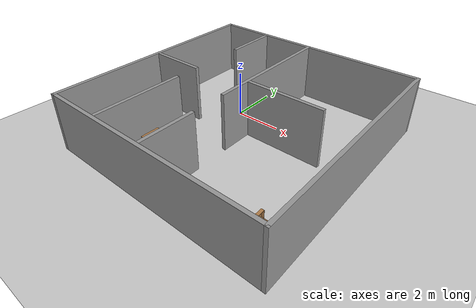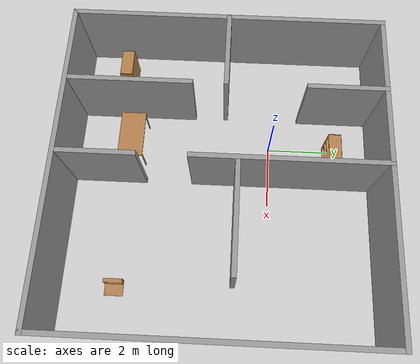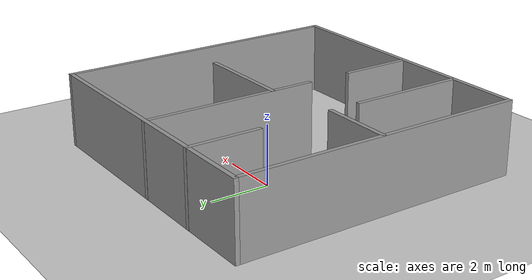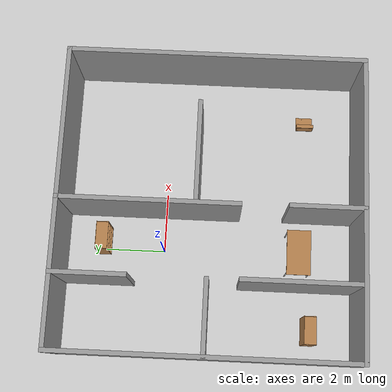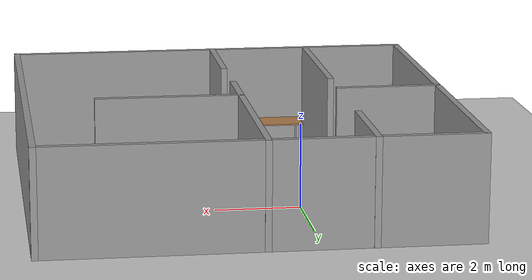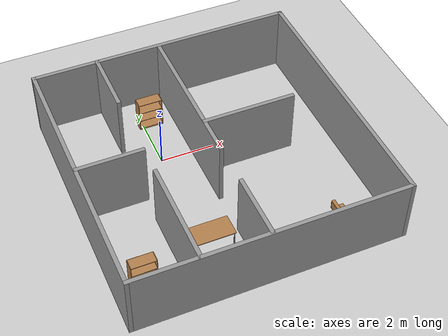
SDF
<sdf version="1.7">
 <world name="default">
  <light name="sun" type="directional">
   <pose>0 0 10 0 -0 0</pose>
   <diffuse>0.8 0.8 0.8 1</diffuse>
   <specular>0.2 0.2 0.2 1</specular>
   <attenuation>
    <range>1000</range>
    <constant>0.9</constant>
    <linear>0.01</linear>
    <quadratic>0.001</quadratic>
   </attenuation>
   <direction>-0.5 0.1 -0.9</direction>
   <spot><inner_angle>0</inner_angle><outer_angle>0</outer_angle><falloff>0</falloff></spot>
  </light>
  <model name="ground_plane">
   <static>1</static>
   <link name="link">
    <collision name="collision">
     <geometry><plane><normal>0 0 1</normal><size>100 100</size></plane></geometry>
     <surface>
      <contact><collide_bitmask>65535</collide_bitmask></contact>
      <friction><ode><mu>100</mu><mu2>50</mu2></ode></friction>
     </surface>
    </collision>
    <visual name="visual">
     <cast_shadows>0</cast_shadows>
     <geometry><plane><normal>0 0 1</normal><size>100 100</size></plane></geometry>
     <material>
      <script><uri>file://media/materials/scripts/gazebo.material</uri><name>Gazebo/Grey</name></script>
     </material>
    </visual>
   </link>
  </model>
  <gravity>0 0 -9.8</gravity>
  <magnetic_field>6e-06 2.3e-05 -4.2e-05</magnetic_field>
  <atmosphere type="adiabatic"/>
  <physics type="ode">
   <max_step_size>0.001</max_step_size>
   <real_time_factor>1</real_time_factor>
   <real_time_update_rate>1000</real_time_update_rate>
  </physics>
  <scene><ambient>0.4 0.4 0.4 1</ambient><background>0.7 0.7 0.7 1</background><shadows>1</shadows></scene>
  <spherical_coordinates>
   <surface_model>EARTH_WGS84</surface_model>
   <latitude_deg>0</latitude_deg>
   <longitude_deg>0</longitude_deg>
   <elevation>0</elevation>
   <heading_deg>0</heading_deg>
  </spherical_coordinates>
  <model name="room_with_walls_10x10">
   <pose>1.49895 -1.53115 0 0 -0 0</pose>
   <link name="Wall_1">
    <collision name="Wall_1_Collision">
     <geometry><box><size>10 0.15 2.5</size></box></geometry>
     <pose>0 0 1.25 0 -0 0</pose>
    </collision>
    <visual name="Wall_1_Visual">
     <pose>0 0 1.25 0 -0 0</pose>
     <geometry><box><size>10 0.15 2.5</size></box></geometry>
     <material>
      <script><uri>file://media/materials/scripts/gazebo.material</uri><name>Gazebo/Grey</name></script>
      <ambient>1 1 1 1</ambient>
     </material>
     <meta><layer>0</layer></meta>
    </visual>
    <pose>-0.119159 -4.92736 0 0 -0 0</pose>
   </link>
   <link name="Wall_11">
    <collision name="Wall_11_Collision">
     <geometry><box><size>2.5 0.15 2.5</size></box></geometry>
     <pose>0 0 1.25 0 -0 0</pose>
    </collision>
    <visual name="Wall_11_Visual">
     <pose>0 0 1.25 0 -0 0</pose>
     <geometry><box><size>2.5 0.15 2.5</size></box></geometry>
     <material>
      <script><uri>file://media/materials/scripts/gazebo.material</uri><name>Gazebo/Grey</name></script>
      <ambient>1 1 1 1</ambient>
     </material>
     <meta><layer>0</layer></meta>
    </visual>
    <pose>-2.64666 3.75236 0 0 -0 -1.5708</pose>
   </link>
   <link name="Wall_16">
    <collision name="Wall_16_Collision">
     <geometry><box><size>2.5 0.15 2.5</size></box></geometry>
     <pose>0 0 1.25 0 -0 0</pose>
    </collision>
    <visual name="Wall_16_Visual">
     <pose>0 0 1.25 0 -0 0</pose>
     <geometry><box><size>2.5 0.15 2.5</size></box></geometry>
     <material>
      <script><uri>file://media/materials/scripts/gazebo.material</uri><name>Gazebo/Grey</name></script>
      <ambient>1 1 1 1</ambient>
     </material>
     <meta><layer>0</layer></meta>
    </visual>
    <pose>-3.84066 0.028362 0 0 -0 0</pose>
   </link>
   <link name="Wall_18">
    <collision name="Wall_18_Collision">
     <geometry><box><size>4 0.15 2.5</size></box></geometry>
     <pose>0 0 1.25 0 -0 0</pose>
    </collision>
    <visual name="Wall_18_Visual">
     <pose>0 0 1.25 0 -0 0</pose>
     <geometry><box><size>4 0.15 2.5</size></box></geometry>
     <material>
      <script><uri>file://media/materials/scripts/gazebo.material</uri><name>Gazebo/Grey</name></script>
      <ambient>1 1 1 1</ambient>
     </material>
     <meta><layer>0</layer></meta>
    </visual>
    <pose>-2.63516 -2.99164 0 0 -0 1.5708</pose>
   </link>
   <link name="Wall_2">
    <collision name="Wall_2_Collision">
     <geometry><box><size>10 0.15 2.5</size></box></geometry>
     <pose>0 0 1.25 0 -0 0</pose>
    </collision>
    <visual name="Wall_2_Visual">
     <pose>0 0 1.25 0 -0 0</pose>
     <geometry><box><size>10 0.15 2.5</size></box></geometry>
     <material>
      <script><uri>file://media/materials/scripts/gazebo.material</uri><name>Gazebo/Grey</name></script>
      <ambient>1 1 1 1</ambient>
     </material>
     <meta><layer>0</layer></meta>
    </visual>
    <pose>4.80584 -0.002362 0 0 -0 1.5708</pose>
   </link>
   <link name="Wall_24">
    <collision name="Wall_24_Collision">
     <geometry><box><size>6 0.15 2.5</size></box></geometry>
     <pose>0 0 1.25 0 -0 0</pose>
    </collision>
    <visual name="Wall_24_Visual">
     <pose>0 0 1.25 0 -0 0</pose>
     <geometry><box><size>6 0.15 2.5</size></box></geometry>
     <material>
      <script><uri>file://media/materials/scripts/gazebo.material</uri><name>Gazebo/Grey</name></script>
      <ambient>1 1 1 1</ambient>
     </material>
     <meta><layer>0</layer></meta>
    </visual>
    <pose>-0.243157 2.00236 0 0 -0 -1.5708</pose>
   </link>
   <link name="Wall_28">
    <collision name="Wall_28_Collision">
     <geometry><box><size>2.5 0.15 2.5</size></box></geometry>
     <pose>0 0 1.25 0 -0 0</pose>
    </collision>
    <visual name="Wall_28_Visual">
     <pose>0 0 1.25 0 -0 0</pose>
     <geometry><box><size>2.5 0.15 2.5</size></box></geometry>
     <material>
      <script><uri>file://media/materials/scripts/gazebo.material</uri><name>Gazebo/Grey</name></script>
      <ambient>1 1 1 1</ambient>
     </material>
     <meta><layer>0</layer></meta>
    </visual>
    <pose>-0.220157 -3.74164 0 0 -0 1.5708</pose>
   </link>
   <link name="Wall_3">
    <collision name="Wall_3_Collision">
     <geometry><box><size>10 0.15 2.5</size></box></geometry>
     <pose>0 0 1.25 0 -0 0</pose>
    </collision>
    <visual name="Wall_3_Visual">
     <pose>0 0 1.25 0 -0 0</pose>
     <geometry><box><size>10 0.15 2.5</size></box></geometry>
     <material>
      <script><uri>file://media/materials/scripts/gazebo.material</uri><name>Gazebo/Grey</name></script>
      <ambient>1 1 1 1</ambient>
     </material>
     <meta><layer>0</layer></meta>
    </visual>
    <pose>-0.119159 4.92264 0 0 -0 3.14159</pose>
   </link>
   <link name="Wall_36">
    <collision name="Wall_36_Collision">
     <geometry><box><size>3.5 0.15 2.5</size></box></geometry>
     <pose>0 0 1.25 0 -0 0</pose>
    </collision>
    <visual name="Wall_36_Visual">
     <pose>0 0 1.25 0 -0 0</pose>
     <geometry><box><size>3.5 0.15 2.5</size></box></geometry>
     <material>
      <script><uri>file://media/materials/scripts/gazebo.material</uri><name>Gazebo/Grey</name></script>
      <ambient>1 1 1 1</ambient>
     </material>
     <meta><layer>0</layer></meta>
    </visual>
    <pose>1.44334 0.476862 0 0 -0 0</pose>
   </link>
   <link name="Wall_4">
    <collision name="Wall_4_Collision">
     <geometry><box><size>10 0.15 2.5</size></box></geometry>
     <pose>0 0 1.25 0 -0 0</pose>
    </collision>
    <visual name="Wall_4_Visual">
     <pose>0 0 1.25 0 -0 0</pose>
     <geometry><box><size>10 0.15 2.5</size></box></geometry>
     <material>
      <script><uri>file://media/materials/scripts/gazebo.material</uri><name>Gazebo/Grey</name></script>
      <ambient>1 1 1 1</ambient>
     </material>
     <meta><layer>0</layer></meta>
    </visual>
    <pose>-5.04416 -0.002362 0 0 -0 -1.5708</pose>
   </link>
   <static>1</static>
  </model>
  <model name="bookshelf">
   <static>1</static>
   <link name="link">
    <inertial><mass>1</mass></inertial>
    <collision name="back">
     <pose>0 0.005 0.6 0 -0 0</pose>
     <geometry><box><size>0.9 0.01 1.2</size></box></geometry>
    </collision>
    <visual name="visual1">
     <pose>0 0.005 0.6 0 -0 0</pose>
     <geometry><box><size>0.9 0.01 1.2</size></box></geometry>
     <material>
      <script><uri>file://media/materials/scripts/gazebo.material</uri><name>Gazebo/Wood</name></script>
     </material>
    </visual>
    <collision name="left_side">
     <pose>0.45 -0.195 0.6 0 -0 0</pose>
     <geometry><box><size>0.02 0.4 1.2</size></box></geometry>
    </collision>
    <visual name="visual2">
     <pose>0.45 -0.195 0.6 0 -0 0</pose>
     <geometry><box><size>0.02 0.4 1.2</size></box></geometry>
     <material>
      <script><uri>file://media/materials/scripts/gazebo.material</uri><name>Gazebo/Wood</name></script>
     </material>
    </visual>
    <collision name="right_side">
     <pose>-0.45 -0.195 0.6 0 -0 0</pose>
     <geometry><box><size>0.02 0.4 1.2</size></box></geometry>
    </collision>
    <visual name="visual3">
     <pose>-0.45 -0.195 0.6 0 -0 0</pose>
     <geometry><box><size>0.02 0.4 1.2</size></box></geometry>
     <material>
      <script><uri>file://media/materials/scripts/gazebo.material</uri><name>Gazebo/Wood</name></script>
     </material>
    </visual>
    <collision name="bottom">
     <pose>0 -0.195 0.03 0 -0 0</pose>
     <geometry><box><size>0.88 0.4 0.06</size></box></geometry>
    </collision>
    <visual name="visual4">
     <pose>0 -0.195 0.03 0 -0 0</pose>
     <geometry><box><size>0.88 0.4 0.06</size></box></geometry>
     <material>
      <script><uri>file://media/materials/scripts/gazebo.material</uri><name>Gazebo/Wood</name></script>
     </material>
    </visual>
    <collision name="top">
     <pose>0 -0.195 1.19 0 -0 0</pose>
     <geometry><box><size>0.88 0.4 0.02</size></box></geometry>
    </collision>
    <visual name="visual5">
     <pose>0 -0.195 1.19 0 -0 0</pose>
     <geometry><box><size>0.88 0.4 0.02</size></box></geometry>
     <material>
      <script><uri>file://media/materials/scripts/gazebo.material</uri><name>Gazebo/Wood</name></script>
     </material>
    </visual>
    <collision name="low_shelf">
     <pose>0 -0.195 0.43 0 -0 0</pose>
     <geometry><box><size>0.88 0.4 0.02</size></box></geometry>
    </collision>
    <visual name="visual6">
     <pose>0 -0.195 0.43 0 -0 0</pose>
     <geometry><box><size>0.88 0.4 0.02</size></box></geometry>
     <material>
      <script><uri>file://media/materials/scripts/gazebo.material</uri><name>Gazebo/Wood</name></script>
     </material>
    </visual>
    <collision name="high_shelf">
     <pose>0 -0.195 0.8 0 -0 0</pose>
     <geometry><box><size>0.88 0.4 0.02</size></box></geometry>
    </collision>
    <visual name="visual7">
     <pose>0 -0.195 0.8 0 -0 0</pose>
     <geometry><box><size>0.88 0.4 0.02</size></box></geometry>
     <material>
      <script><uri>file://media/materials/scripts/gazebo.material</uri><name>Gazebo/Wood</name></script>
     </material>
    </visual>
   </link>
   <pose>-2.53349 -4.71769 0 0 -0 0</pose>
  </model>
  <model name="table">
   <static>1</static>
   <link name="link">
    <collision name="surface">
     <pose>0 0 1 0 -0 0</pose>
     <geometry><box><size>1.5 0.8 0.03</size></box></geometry>
     <surface><friction><ode><mu>0.6</mu><mu2>0.6</mu2></ode></friction></surface>
    </collision>
    <visual name="visual1">
     <pose>0 0 1 0 -0 0</pose>
     <geometry><box><size>1.5 0.8 0.03</size></box></geometry>
     <material>
      <script><uri>file://media/materials/scripts/gazebo.material</uri><name>Gazebo/Wood</name></script>
     </material>
    </visual>
    <collision name="front_left_leg">
     <pose>0.68 0.38 0.5 0 -0 0</pose>
     <geometry><cylinder><radius>0.02</radius><length>1</length></cylinder></geometry>
    </collision>
    <visual name="front_left_leg">
     <pose>0.68 0.38 0.5 0 -0 0</pose>
     <geometry><cylinder><radius>0.02</radius><length>1</length></cylinder></geometry>
     <material>
      <script><uri>file://media/materials/scripts/gazebo.material</uri><name>Gazebo/Grey</name></script>
     </material>
    </visual>
    <collision name="front_right_leg">
     <pose>0.68 -0.38 0.5 0 -0 0</pose>
     <geometry><cylinder><radius>0.02</radius><length>1</length></cylinder></geometry>
    </collision>
    <visual name="front_right_leg">
     <pose>0.68 -0.38 0.5 0 -0 0</pose>
     <geometry><cylinder><radius>0.02</radius><length>1</length></cylinder></geometry>
     <material>
      <script><uri>file://media/materials/scripts/gazebo.material</uri><name>Gazebo/Grey</name></script>
     </material>
    </visual>
    <collision name="back_right_leg">
     <pose>-0.68 -0.38 0.5 0 -0 0</pose>
     <geometry><cylinder><radius>0.02</radius><length>1</length></cylinder></geometry>
    </collision>
    <visual name="back_right_leg">
     <pose>-0.68 -0.38 0.5 0 -0 0</pose>
     <geometry><cylinder><radius>0.02</radius><length>1</length></cylinder></geometry>
     <material>
      <script><uri>file://media/materials/scripts/gazebo.material</uri><name>Gazebo/Grey</name></script>
     </material>
    </visual>
    <collision name="back_left_leg">
     <pose>-0.68 0.38 0.5 0 -0 0</pose>
     <geometry><cylinder><radius>0.02</radius><length>1</length></cylinder></geometry>
    </collision>
    <visual name="back_left_leg">
     <pose>-0.68 0.38 0.5 0 -0 0</pose>
     <geometry><cylinder><radius>0.02</radius><length>1</length></cylinder></geometry>
     <material>
      <script><uri>file://media/materials/scripts/gazebo.material</uri><name>Gazebo/Grey</name></script>
     </material>
    </visual>
   </link>
   <pose>0.019878 -4.51721 0 0 -0 0</pose>
  </model>
  <model name="bookshelf_0">
   <static>1</static>
   <link name="link">
    <inertial><mass>1</mass></inertial>
    <collision name="back">
     <pose>0 0.005 0.6 0 -0 0</pose>
     <geometry><box><size>0.9 0.01 1.2</size></box></geometry>
    </collision>
    <visual name="visual1">
     <pose>0 0.005 0.6 0 -0 0</pose>
     <geometry><box><size>0.9 0.01 1.2</size></box></geometry>
     <material>
      <script><uri>file://media/materials/scripts/gazebo.material</uri><name>Gazebo/Wood</name></script>
     </material>
    </visual>
    <collision name="left_side">
     <pose>0.45 -0.195 0.6 0 -0 0</pose>
     <geometry><box><size>0.02 0.4 1.2</size></box></geometry>
    </collision>
    <visual name="visual2">
     <pose>0.45 -0.195 0.6 0 -0 0</pose>
     <geometry><box><size>0.02 0.4 1.2</size></box></geometry>
     <material>
      <script><uri>file://media/materials/scripts/gazebo.material</uri><name>Gazebo/Wood</name></script>
     </material>
    </visual>
    <collision name="right_side">
     <pose>-0.45 -0.195 0.6 0 -0 0</pose>
     <geometry><box><size>0.02 0.4 1.2</size></box></geometry>
    </collision>
    <visual name="visual3">
     <pose>-0.45 -0.195 0.6 0 -0 0</pose>
     <geometry><box><size>0.02 0.4 1.2</size></box></geometry>
     <material>
      <script><uri>file://media/materials/scripts/gazebo.material</uri><name>Gazebo/Wood</name></script>
     </material>
    </visual>
    <collision name="bottom">
     <pose>0 -0.195 0.03 0 -0 0</pose>
     <geometry><box><size>0.88 0.4 0.06</size></box></geometry>
    </collision>
    <visual name="visual4">
     <pose>0 -0.195 0.03 0 -0 0</pose>
     <geometry><box><size>0.88 0.4 0.06</size></box></geometry>
     <material>
      <script><uri>file://media/materials/scripts/gazebo.material</uri><name>Gazebo/Wood</name></script>
     </material>
    </visual>
    <collision name="top">
     <pose>0 -0.195 1.19 0 -0 0</pose>
     <geometry><box><size>0.88 0.4 0.02</size></box></geometry>
    </collision>
    <visual name="visual5">
     <pose>0 -0.195 1.19 0 -0 0</pose>
     <geometry><box><size>0.88 0.4 0.02</size></box></geometry>
     <material>
      <script><uri>file://media/materials/scripts/gazebo.material</uri><name>Gazebo/Wood</name></script>
     </material>
    </visual>
    <collision name="low_shelf">
     <pose>0 -0.195 0.43 0 -0 0</pose>
     <geometry><box><size>0.88 0.4 0.02</size></box></geometry>
    </collision>
    <visual name="visual6">
     <pose>0 -0.195 0.43 0 -0 0</pose>
     <geometry><box><size>0.88 0.4 0.02</size></box></geometry>
     <material>
      <script><uri>file://media/materials/scripts/gazebo.material</uri><name>Gazebo/Wood</name></script>
     </material>
    </visual>
    <collision name="high_shelf">
     <pose>0 -0.195 0.8 0 -0 0</pose>
     <geometry><box><size>0.88 0.4 0.02</size></box></geometry>
    </collision>
    <visual name="visual7">
     <pose>0 -0.195 0.8 0 -0 0</pose>
     <geometry><box><size>0.88 0.4 0.02</size></box></geometry>
     <material>
      <script><uri>file://media/materials/scripts/gazebo.material</uri><name>Gazebo/Wood</name></script>
     </material>
    </visual>
   </link>
   <pose>0.294283 2.23927 0 0 -0 0</pose>
  </model>
  <model name="wooden_case">
   <link name="base">
    <pose>0 0 0.024 0 -0 0</pose>
    <inertial>
     <pose>-0.022184 0 0.171592 0 -0 0</pose>
     <mass>3.96264</mass>
     <inertia>
      <ixx>0.213536</ixx>
      <ixy>0</ixy>
      <ixz>0.000779377</ixz>
      <iyy>0.0708943</iyy>
      <iyz>0</iyz>
      <izz>0.154604</izz>
     </inertia>
    </inertial>
    <collision name="collision_back">
     <pose>-0.053975 0 0.1778 0 -0 0</pose>
     <geometry><box><size>0.01905 0.5461 0.3175</size></box></geometry>
     <surface>
      <contact>
       <poissons_ratio>0.347</poissons_ratio>
       <elastic_modulus>8.8e+09</elastic_modulus>
       <ode><kp>100000</kp><kd>100</kd><max_vel>100</max_vel><min_depth>0.001</min_depth></ode>
      </contact>
      <friction>
       <torsional>
        <coefficient>1</coefficient>
        <use_patch_radius>0</use_patch_radius>
        <surface_radius>0.01</surface_radius>
       </torsional>
      </friction>
     </surface>
    </collision>
    <visual name="visual_back">
     <pose>-0.053975 0 0.1778 0 -0 0</pose>
     <geometry><box><size>0.01905 0.5461 0.3175</size></box></geometry>
     <material>
      <script><uri>file://media/materials/scripts/gazebo.material</uri><name>Gazebo/Wood</name></script>
     </material>
    </visual>
    <collision name="collision_bottom">
     <pose>0 0 0.009525 0 -0 0</pose>
     <geometry><box><size>0.127 0.5842 0.01905</size></box></geometry>
     <surface>
      <contact>
       <poissons_ratio>0.347</poissons_ratio>
       <elastic_modulus>8.8e+09</elastic_modulus>
       <ode><kp>100000</kp><kd>100</kd><max_vel>100</max_vel><min_depth>0.001</min_depth></ode>
      </contact>
      <friction>
       <torsional>
        <coefficient>1</coefficient>
        <use_patch_radius>0</use_patch_radius>
        <surface_radius>0.01</surface_radius>
       </torsional>
      </friction>
     </surface>
    </collision>
    <visual name="visual_bottom">
     <pose>0 0 0.009525 0 -0 0</pose>
     <geometry><box><size>0.127 0.5842 0.01905</size></box></geometry>
     <material>
      <script><uri>file://media/materials/scripts/gazebo.material</uri><name>Gazebo/Wood</name></script>
     </material>
    </visual>
    <collision name="collision_top">
     <pose>0 0 0.346075 0 -0 0</pose>
     <geometry><box><size>0.127 0.5842 0.01905</size></box></geometry>
     <surface>
      <contact>
       <poissons_ratio>0.347</poissons_ratio>
       <elastic_modulus>8.8e+09</elastic_modulus>
       <ode><kp>100000</kp><kd>100</kd><max_vel>100</max_vel><min_depth>0.001</min_depth></ode>
      </contact>
      <friction>
       <torsional>
        <coefficient>1</coefficient>
        <use_patch_radius>0</use_patch_radius>
        <surface_radius>0.01</surface_radius>
       </torsional>
      </friction>
     </surface>
    </collision>
    <visual name="visual_top">
     <pose>0 0 0.346075 0 -0 0</pose>
     <geometry><box><size>0.127 0.5842 0.01905</size></box></geometry>
     <material>
      <script><uri>file://media/materials/scripts/gazebo.material</uri><name>Gazebo/Wood</name></script>
     </material>
    </visual>
    <collision name="collision_left">
     <pose>0 -0.282575 0.1778 0 -0 0</pose>
     <geometry><box><size>0.127 0.01905 0.3175</size></box></geometry>
     <surface>
      <contact>
       <poissons_ratio>0.347</poissons_ratio>
       <elastic_modulus>8.8e+09</elastic_modulus>
       <ode><kp>100000</kp><kd>100</kd><max_vel>100</max_vel><min_depth>0.001</min_depth></ode>
      </contact>
      <friction>
       <torsional>
        <coefficient>1</coefficient>
        <use_patch_radius>0</use_patch_radius>
        <surface_radius>0.01</surface_radius>
       </torsional>
      </friction>
     </surface>
    </collision>
    <visual name="visual_left">
     <pose>0 -0.282575 0.1778 0 -0 0</pose>
     <geometry><box><size>0.127 0.01905 0.3175</size></box></geometry>
     <material>
      <script><uri>file://media/materials/scripts/gazebo.material</uri><name>Gazebo/Wood</name></script>
     </material>
    </visual>
    <collision name="collision_right">
     <pose>0 0.282575 0.1778 0 -0 0</pose>
     <geometry><box><size>0.127 0.01905 0.3175</size></box></geometry>
     <surface>
      <contact>
       <poissons_ratio>0.347</poissons_ratio>
       <elastic_modulus>8.8e+09</elastic_modulus>
       <ode><kp>100000</kp><kd>100</kd><max_vel>100</max_vel><min_depth>0.001</min_depth></ode>
      </contact>
      <friction>
       <torsional>
        <coefficient>1</coefficient>
        <use_patch_radius>0</use_patch_radius>
        <surface_radius>0.01</surface_radius>
       </torsional>
      </friction>
     </surface>
    </collision>
    <visual name="visual_right">
     <pose>0 0.282575 0.1778 0 -0 0</pose>
     <geometry><box><size>0.127 0.01905 0.3175</size></box></geometry>
     <material>
      <script><uri>file://media/materials/scripts/gazebo.material</uri><name>Gazebo/Wood</name></script>
     </material>
    </visual>
    <collision name="collision_block_left">
     <pose>0.0095 -0.2151 -0.012 0 -0 0</pose>
     <geometry><box><size>0.108 0.05 0.024</size></box></geometry>
     <surface>
      <contact>
       <poissons_ratio>0.347</poissons_ratio>
       <elastic_modulus>8.8e+09</elastic_modulus>
       <ode><kp>100000</kp><kd>100</kd><max_vel>100</max_vel><min_depth>0.001</min_depth></ode>
      </contact>
      <friction>
       <torsional>
        <coefficient>1</coefficient>
        <use_patch_radius>0</use_patch_radius>
        <surface_radius>0.01</surface_radius>
       </torsional>
      </friction>
     </surface>
    </collision>
    <visual name="visual_block_left">
     <pose>0.0095 -0.2151 -0.012 0 -0 0</pose>
     <geometry><box><size>0.108 0.05 0.024</size></box></geometry>
     <material>
      <script><uri>file://media/materials/scripts/gazebo.material</uri><name>Gazebo/Wood</name></script>
     </material>
    </visual>
    <collision name="collision_block_right">
     <pose>0.0095 0.2151 -0.012 0 -0 0</pose>
     <geometry><box><size>0.108 0.05 0.024</size></box></geometry>
     <surface>
      <contact>
       <poissons_ratio>0.347</poissons_ratio>
       <elastic_modulus>8.8e+09</elastic_modulus>
       <ode><kp>100000</kp><kd>100</kd><max_vel>100</max_vel><min_depth>0.001</min_depth></ode>
      </contact>
      <friction>
       <torsional>
        <coefficient>1</coefficient>
        <use_patch_radius>0</use_patch_radius>
        <surface_radius>0.01</surface_radius>
       </torsional>
      </friction>
     </surface>
    </collision>
    <visual name="visual_block_right">
     <pose>0.0095 0.2151 -0.012 0 -0 0</pose>
     <geometry><box><size>0.108 0.05 0.024</size></box></geometry>
     <material>
      <script><uri>file://media/materials/scripts/gazebo.material</uri><name>Gazebo/Wood</name></script>
     </material>
    </visual>
   </link>
   <link name="lid">
    <pose>0.243775 0 0.009525 0 -0 0</pose>
    <inertial>
     <mass>1.97874</mass>
     <inertia>
      <ixx>0.0563367</ixx>
      <ixy>0</ixy>
      <ixz>0</ixz>
      <iyy>0.020911</iyy>
      <iyz>0</iyz>
      <izz>0.0771281</izz>
     </inertia>
    </inertial>
    <collision name="collision">
     <geometry><box><size>0.3556 0.5842 0.01905</size></box></geometry>
     <surface>
      <contact>
       <poissons_ratio>0.347</poissons_ratio>
       <elastic_modulus>8.8e+09</elastic_modulus>
       <ode><kp>100000</kp><kd>100</kd><max_vel>100</max_vel><min_depth>0.001</min_depth></ode>
      </contact>
      <friction>
       <torsional>
        <coefficient>1</coefficient>
        <use_patch_radius>0</use_patch_radius>
        <surface_radius>0.01</surface_radius>
       </torsional>
      </friction>
     </surface>
    </collision>
    <visual name="visual">
     <geometry><box><size>0.3556 0.5842 0.01905</size></box></geometry>
     <material>
      <script><uri>file://media/materials/scripts/gazebo.material</uri><name>Gazebo/Wood</name></script>
     </material>
    </visual>
    <visual name="tee_nut_1">
     <pose>0.122 -0.216 0 0 -0 0</pose>
     <geometry><cylinder><radius>0.00635</radius><length>0.0192405</length></cylinder></geometry>
     <material>
      <script><uri>file://media/materials/scripts/gazebo.material</uri><name>Gazebo/Grey</name></script>
     </material>
    </visual>
    <visual name="tee_nut_2">
     <pose>0.122 -0.088 0 0 -0 0</pose>
     <geometry><cylinder><radius>0.00635</radius><length>0.0192405</length></cylinder></geometry>
     <material>
      <script><uri>file://media/materials/scripts/gazebo.material</uri><name>Gazebo/Grey</name></script>
     </material>
    </visual>
    <visual name="tee_nut_3">
     <pose>0.122 0.088 0 0 -0 0</pose>
     <geometry><cylinder><radius>0.00635</radius><length>0.0192405</length></cylinder></geometry>
     <material>
      <script><uri>file://media/materials/scripts/gazebo.material</uri><name>Gazebo/Grey</name></script>
     </material>
    </visual>
    <visual name="tee_nut_4">
     <pose>0.122 0.216 0 0 -0 0</pose>
     <geometry><cylinder><radius>0.00635</radius><length>0.0192405</length></cylinder></geometry>
     <material>
      <script><uri>file://media/materials/scripts/gazebo.material</uri><name>Gazebo/Grey</name></script>
     </material>
    </visual>
   </link>
   <joint name="lid_hinge" type="revolute">
    <pose>-0.1778 0 0.01905 0 -0 0</pose>
    <parent>base</parent>
    <child>lid</child>
    <axis>
     <xyz>0 1 0</xyz>
     <limit><upper>0.523599</upper><lower>-1.5708</lower></limit>
     <dynamics><spring_reference>0</spring_reference><spring_stiffness>0</spring_stiffness></dynamics>
    </axis>
   </joint>
   <pose>4.67206 -4.72769 -0.001057 0 -0.000429 0</pose>
  </model>
 </world>
</sdf>
